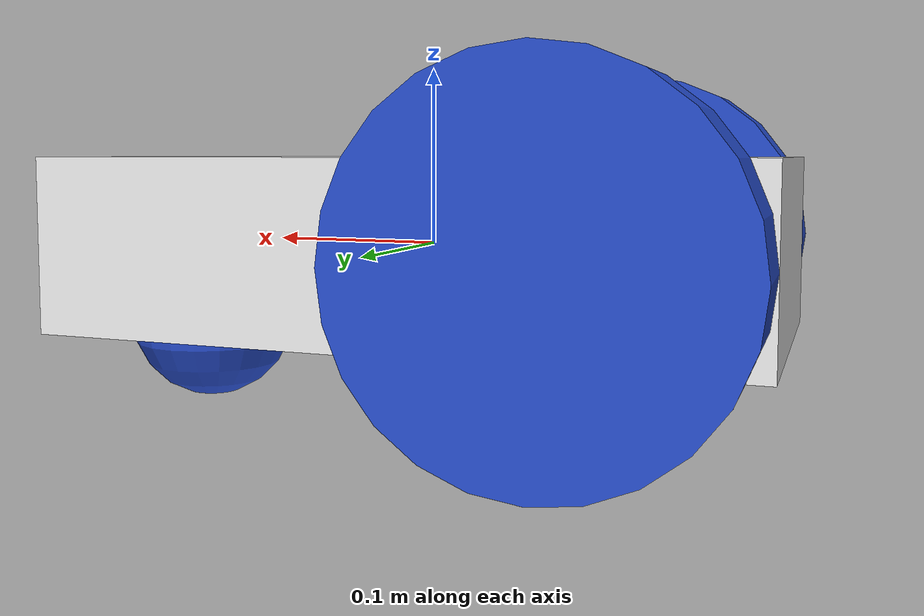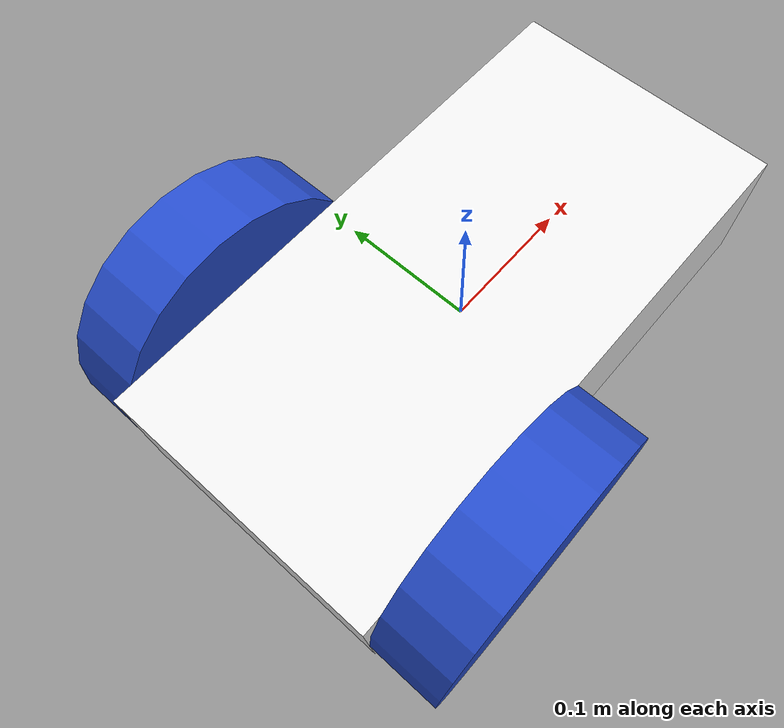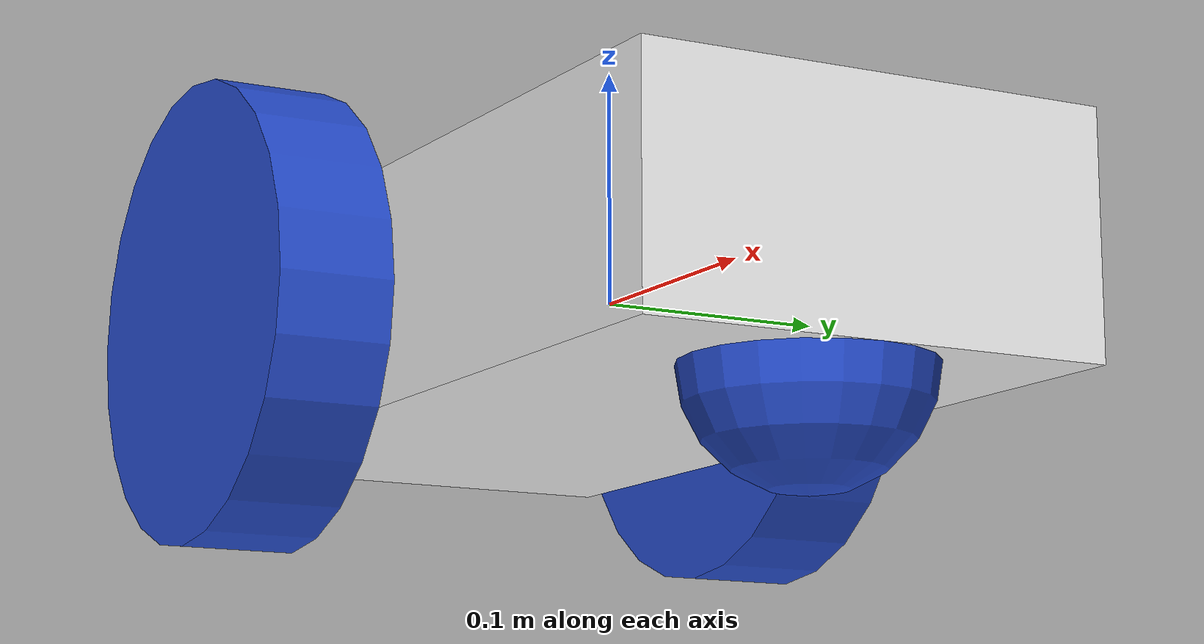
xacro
<?xml version='1.0'?>

<robot name="myrobot" xmlns:xacro="http://www.ros.org/wiki/xacro">

<xacro:include filename="$(find 2wbot_description)/urdf/materials.xacro"/>
<xacro:include filename="$(find 2wbot_description)/urdf/2wbot.gazebo"/>

 <link name='chassis'>
    <pose>0 0 0.1 0 0 0</pose>

    <inertial>
      <mass value="5.0"/>
      <origin xyz="0.0 0 0.1" rpy=" 0 0 0"/>
      <inertia
          ixx="0.1" ixy="0" ixz="0"
          iyy="0.1" iyz="0"
          izz="0.1"
      />
    </inertial>

    <collision name='collision'>
      <geometry>
        <box size=".4 .2 .1"/>
      </geometry>
    </collision>

    <visual name='chassis_visual'>
      <origin xyz="0 0 0" rpy=" 0 0 0"/>
      <geometry>
        <box size=".4 .2 .1"/>
      </geometry>
      <material name="white"/>
    </visual>

    <collision name='caster_front_collision'>
      <origin xyz="0.15 0 -0.05" rpy=" 0 0 0"/>
      <geometry>
        <sphere radius="0.05"/>
      </geometry>
    </collision>

    <visual name='caster_front_visual'>
      <origin xyz="0.15 0 -0.05" rpy=" 0 0 0"/>
      <geometry>
        <sphere radius="0.05"/>
      </geometry>
      <material name="blue"/>
    </visual>

  </link>

  <link name="left_wheel">
    <!--origin xyz="0.1 0.13 0.1" rpy="0 1.5707 1.5707"/-->
    <collision name="collision">
      <origin xyz="0 0 0" rpy="0 1.5707 1.5707"/>
      <geometry>
        <cylinder radius="0.1" length="0.05"/>
      </geometry>
    </collision>
    <visual name="left_wheel_visual">
      <origin xyz="0 0 0" rpy="0 1.5707 1.5707"/>
      <geometry>
        <cylinder radius="0.1" length="0.05"/>
      </geometry>
      <material name="blue"/>
    </visual>
    <inertial>
      <origin xyz="0 0 0" rpy="0 1.5707 1.5707"/>
      <mass value="5"/>
      <inertia
        ixx=".1" ixy="0.0" ixz="0.0"
        iyy=".1" iyz="0.0"
        izz=".1"/>
    </inertial>
  </link>

  <link name="right_wheel">
    <!--origin xyz="0.1 -0.13 0.1" rpy="0 1.5707 1.5707"/-->
    <collision name="collision">
      <origin xyz="0 0 0" rpy="0 1.5707 1.5707"/>
      <geometry>
        <cylinder radius="0.1" length="0.05"/>
      </geometry>
    </collision>
    <visual name="right_wheel_visual">
      <origin xyz="0 0 0" rpy="0 1.5707 1.5707"/>
      <geometry>
        <cylinder radius="0.1" length="0.05"/>
      </geometry>
      <material name="blue"/>
    </visual>
    <inertial>
      <origin xyz="0 0 0" rpy="0 1.5707 1.5707"/>
      <mass value="5"/>
      <inertia
        ixx=".1" ixy="0.0" ixz="0.0"
        iyy=".1" iyz="0.0"
        izz=".1"/>
    </inertial>
  </link>

  <joint type="continuous" name="left_wheel_hinge">
    <origin xyz="-0.1 0.125 0" rpy="0 0 0"/>
    <!--origin xyz="0.1 0.13 0" rpy="0 1.5707 1.5707"/-->
    <child link="left_wheel"/>
    <parent link="chassis"/>
    <axis xyz="0 1 0" rpy="0 0 0"/>
    <joint_properties damping="0.0" friction="0.0"/>
  </joint>

  <joint type="continuous" name="right_wheel_hinge">
    <origin xyz="-0.1 -0.125 0" rpy="0 0 0"/>
    <!--origin xyz="0.1 -0.13 0" rpy="0 1.5707 1.5707"/-->
    <child link="right_wheel"/>
    <parent link="chassis"/>
    <axis xyz="0 1 0" rpy="0 0 0"/>
    <joint_properties damping="0.0" friction="0.0"/>
  </joint>

</robot>
